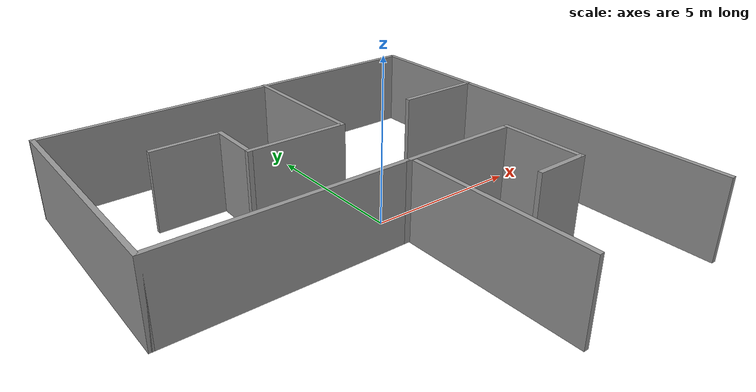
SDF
<?xml version='1.0'?>
<sdf version='1.7'>
  <model name='maze'>
    <pose>-0.93985 -0.369722 0 0 -0 0</pose>
    <link name='Wall_12'>
      <collision name='Wall_12_Collision'>
        <geometry>
          <box>
            <size>7.5 0.15 2.5</size>
          </box>
        </geometry>
        <pose>0 0 1.25 0 -0 0</pose>
      </collision>
      <visual name='Wall_12_Visual'>
        <pose>0 0 1.25 0 -0 0</pose>
        <geometry>
          <box>
            <size>7.5 0.15 2.5</size>
          </box>
        </geometry>
        <material>
          <script>
            <uri>file://media/materials/scripts/gazebo.material</uri>
            <name>Gazebo/Grey</name>
          </script>
          <ambient>1 1 1 1</ambient>
        </material>
        <meta>
          <layer>0</layer>
        </meta>
      </visual>
      <pose>-6.55 2.85046 0 0 -0 -1.5708</pose>
    </link>
    <link name='Wall_14'>
      <collision name='Wall_14_Collision'>
        <geometry>
          <box>
            <size>4.5 0.15 2.5</size>
          </box>
        </geometry>
        <pose>0 0 1.25 0 -0 0</pose>
      </collision>
      <visual name='Wall_14_Visual'>
        <pose>0 0 1.25 0 -0 0</pose>
        <geometry>
          <box>
            <size>4.5 0.15 2.5</size>
          </box>
        </geometry>
        <material>
          <script>
            <uri>file://media/materials/scripts/gazebo.material</uri>
            <name>Gazebo/Grey</name>
          </script>
          <ambient>1 1 1 1</ambient>
        </material>
        <meta>
          <layer>0</layer>
        </meta>
      </visual>
      <pose>0.943077 4.42082 0 0 -0 -1.5708</pose>
    </link>
    <link name='Wall_15'>
      <collision name='Wall_15_Collision'>
        <geometry>
          <box>
            <size>3.25 0.15 2.5</size>
          </box>
        </geometry>
        <pose>0 0 1.25 0 -0 0</pose>
      </collision>
      <visual name='Wall_15_Visual'>
        <pose>0 0 1.25 0 -0 0</pose>
        <geometry>
          <box>
            <size>3.25 0.15 2.5</size>
          </box>
        </geometry>
        <material>
          <script>
            <uri>file://media/materials/scripts/gazebo.material</uri>
            <name>Gazebo/Grey</name>
          </script>
          <ambient>1 1 1 1</ambient>
        </material>
        <meta>
          <layer>0</layer>
        </meta>
      </visual>
      <pose>-0.606923 2.24582 0 0 -0 3.14159</pose>
    </link>
    <link name='Wall_17'>
      <collision name='Wall_17_Collision'>
        <geometry>
          <box>
            <size>5.75 0.15 2.5</size>
          </box>
        </geometry>
        <pose>0 0 1.25 0 -0 0</pose>
      </collision>
      <visual name='Wall_17_Visual'>
        <pose>0 0 1.25 0 -0 0</pose>
        <geometry>
          <box>
            <size>5.75 0.15 2.5</size>
          </box>
        </geometry>
        <material>
          <script>
            <uri>file://media/materials/scripts/gazebo.material</uri>
            <name>Gazebo/Grey</name>
          </script>
          <ambient>1 1 1 1</ambient>
        </material>
        <meta>
          <layer>0</layer>
        </meta>
      </visual>
      <pose>0.978255 -3.79622 0 0 -0 1.5708</pose>
    </link>
    <link name='Wall_20'>
      <collision name='Wall_20_Collision'>
        <geometry>
          <box>
            <size>7.5 0.15 2.5</size>
          </box>
        </geometry>
        <pose>0 0 1.25 0 -0 0</pose>
      </collision>
      <visual name='Wall_20_Visual'>
        <pose>0 0 1.25 0 -0 0</pose>
        <geometry>
          <box>
            <size>7.5 0.15 2.5</size>
          </box>
        </geometry>
        <material>
          <script>
            <uri>file://media/materials/scripts/gazebo.material</uri>
            <name>Gazebo/Grey</name>
          </script>
          <ambient>1 1 1 1</ambient>
        </material>
        <meta>
          <layer>0</layer>
        </meta>
      </visual>
      <pose>-2.875 -0.82454 0 0 -0 0</pose>
    </link>
    <link name='Wall_21'>
      <collision name='Wall_21_Collision'>
        <geometry>
          <box>
            <size>4 0.15 2.5</size>
          </box>
        </geometry>
        <pose>0 0 1.25 0 -0 0</pose>
      </collision>
      <visual name='Wall_21_Visual'>
        <pose>0 0 1.25 0 -0 0</pose>
        <geometry>
          <box>
            <size>4 0.15 2.5</size>
          </box>
        </geometry>
        <material>
          <script>
            <uri>file://media/materials/scripts/gazebo.material</uri>
            <name>Gazebo/Grey</name>
          </script>
          <ambient>1 1 1 1</ambient>
        </material>
        <meta>
          <layer>0</layer>
        </meta>
      </visual>
      <pose>2.725 -0.82454 0 0 -0 0</pose>
    </link>
    <link name='Wall_22'>
      <collision name='Wall_22_Collision'>
        <geometry>
          <box>
            <size>2.75 0.15 2.5</size>
          </box>
        </geometry>
        <pose>0 0 1.25 0 -0 0</pose>
      </collision>
      <visual name='Wall_22_Visual'>
        <pose>0 0 1.25 0 -0 0</pose>
        <geometry>
          <box>
            <size>2.75 0.15 2.5</size>
          </box>
        </geometry>
        <material>
          <script>
            <uri>file://media/materials/scripts/gazebo.material</uri>
            <name>Gazebo/Grey</name>
          </script>
          <ambient>1 1 1 1</ambient>
        </material>
        <meta>
          <layer>0</layer>
        </meta>
      </visual>
      <pose>4.65 -2.12454 0 0 -0 -1.5708</pose>
    </link>
    <link name='Wall_23'>
      <collision name='Wall_23_Collision'>
        <geometry>
          <box>
            <size>1.75 0.15 2.5</size>
          </box>
        </geometry>
        <pose>0 0 1.25 0 -0 0</pose>
      </collision>
      <visual name='Wall_23_Visual'>
        <pose>0 0 1.25 0 -0 0</pose>
        <geometry>
          <box>
            <size>1.75 0.15 2.5</size>
          </box>
        </geometry>
        <material>
          <script>
            <uri>file://media/materials/scripts/gazebo.material</uri>
            <name>Gazebo/Grey</name>
          </script>
          <ambient>1 1 1 1</ambient>
        </material>
        <meta>
          <layer>0</layer>
        </meta>
      </visual>
      <pose>3.85 -3.42454 0 0 -0 3.14159</pose>
    </link>
    <link name='Wall_25'>
      <collision name='Wall_25_Collision'>
        <geometry>
          <box>
            <size>4.5 0.15 2.5</size>
          </box>
        </geometry>
        <pose>0 0 1.25 0 -0 0</pose>
      </collision>
      <visual name='Wall_25_Visual'>
        <pose>0 0 1.25 0 -0 0</pose>
        <geometry>
          <box>
            <size>4.5 0.15 2.5</size>
          </box>
        </geometry>
        <material>
          <script>
            <uri>file://media/materials/scripts/gazebo.material</uri>
            <name>Gazebo/Grey</name>
          </script>
          <ambient>1 1 1 1</ambient>
        </material>
        <meta>
          <layer>0</layer>
        </meta>
      </visual>
      <pose>0.943077 4.42082 0 0 -0 -1.5708</pose>
    </link>
    <link name='Wall_26'>
      <collision name='Wall_26_Collision'>
        <geometry>
          <box>
            <size>3.25 0.15 2.5</size>
          </box>
        </geometry>
        <pose>0 0 1.25 0 -0 0</pose>
      </collision>
      <visual name='Wall_26_Visual'>
        <pose>0 0 1.25 0 -0 0</pose>
        <geometry>
          <box>
            <size>3.25 0.15 2.5</size>
          </box>
        </geometry>
        <material>
          <script>
            <uri>file://media/materials/scripts/gazebo.material</uri>
            <name>Gazebo/Grey</name>
          </script>
          <ambient>1 1 1 1</ambient>
        </material>
        <meta>
          <layer>0</layer>
        </meta>
      </visual>
      <pose>-0.606923 2.24582 0 0 -0 3.14159</pose>
    </link>
    <link name='Wall_27'>
      <collision name='Wall_27_Collision'>
        <geometry>
          <box>
            <size>1.75 0.15 2.5</size>
          </box>
        </geometry>
        <pose>0 0 1.25 0 -0 0</pose>
      </collision>
      <visual name='Wall_27_Visual'>
        <pose>0 0 1.25 0 -0 0</pose>
        <geometry>
          <box>
            <size>1.75 0.15 2.5</size>
          </box>
        </geometry>
        <material>
          <script>
            <uri>file://media/materials/scripts/gazebo.material</uri>
            <name>Gazebo/Grey</name>
          </script>
          <ambient>1 1 1 1</ambient>
        </material>
        <meta>
          <layer>0</layer>
        </meta>
      </visual>
      <pose>-2.15692 3.04582 0 0 -0 1.5708</pose>
    </link>
    <link name='Wall_28'>
      <collision name='Wall_28_Collision'>
        <geometry>
          <box>
            <size>2.25 0.15 2.5</size>
          </box>
        </geometry>
        <pose>0 0 1.25 0 -0 0</pose>
      </collision>
      <visual name='Wall_28_Visual'>
        <pose>0 0 1.25 0 -0 0</pose>
        <geometry>
          <box>
            <size>2.25 0.15 2.5</size>
          </box>
        </geometry>
        <material>
          <script>
            <uri>file://media/materials/scripts/gazebo.material</uri>
            <name>Gazebo/Grey</name>
          </script>
          <ambient>1 1 1 1</ambient>
        </material>
        <meta>
          <layer>0</layer>
        </meta>
      </visual>
      <pose>-3.20692 3.84582 0 0 -0 3.14159</pose>
    </link>
    <link name='Wall_30'>
      <collision name='Wall_30_Collision'>
        <geometry>
          <box>
            <size>2.75 0.15 2.5</size>
          </box>
        </geometry>
        <pose>0 0 1.25 0 -0 0</pose>
      </collision>
      <visual name='Wall_30_Visual'>
        <pose>0 0 1.25 0 -0 0</pose>
        <geometry>
          <box>
            <size>2.75 0.15 2.5</size>
          </box>
        </geometry>
        <material>
          <script>
            <uri>file://media/materials/scripts/gazebo.material</uri>
            <name>Gazebo/Grey</name>
          </script>
          <ambient>1 1 1 1</ambient>
        </material>
        <meta>
          <layer>0</layer>
        </meta>
      </visual>
      <pose>5.20132 2.62062 0 0 -0 3.14159</pose>
    </link>
    <link name='Wall_5'>
      <collision name='Wall_5_Collision'>
        <geometry>
          <box>
            <size>13.25 0.15 2.5</size>
          </box>
        </geometry>
        <pose>0 0 1.25 0 -0 0</pose>
      </collision>
      <visual name='Wall_5_Visual'>
        <pose>0 0 1.25 0 -0 0</pose>
        <geometry>
          <box>
            <size>13.25 0.15 2.5</size>
          </box>
        </geometry>
        <material>
          <script>
            <uri>file://media/materials/scripts/gazebo.material</uri>
            <name>Gazebo/Grey</name>
          </script>
          <ambient>1 1 1 1</ambient>
        </material>
        <meta>
          <layer>0</layer>
        </meta>
      </visual>
      <pose>0 6.56064 0 0 -0 0.005371</pose>
    </link>
    <link name='Wall_8'>
      <collision name='Wall_8_Collision'>
        <geometry>
          <box>
            <size>13.25 0.15 2.5</size>
          </box>
        </geometry>
        <pose>0 0 1.25 0 -0 0</pose>
      </collision>
      <visual name='Wall_8_Visual'>
        <pose>0 0 1.25 0 -0 0</pose>
        <geometry>
          <box>
            <size>13.25 0.15 2.5</size>
          </box>
        </geometry>
        <material>
          <script>
            <uri>file://media/materials/scripts/gazebo.material</uri>
            <name>Gazebo/Grey</name>
          </script>
          <ambient>1 1 1 1</ambient>
        </material>
        <meta>
          <layer>0</layer>
        </meta>
      </visual>
      <pose>6.55 0.045818 0 0 -0 -1.5708</pose>
    </link>
    <static>1</static>
  </model>
</sdf>
